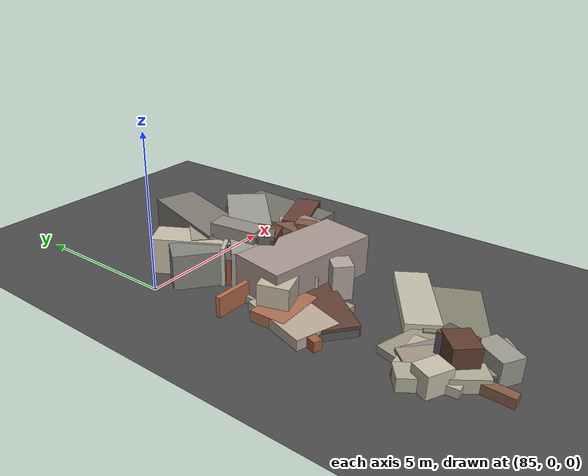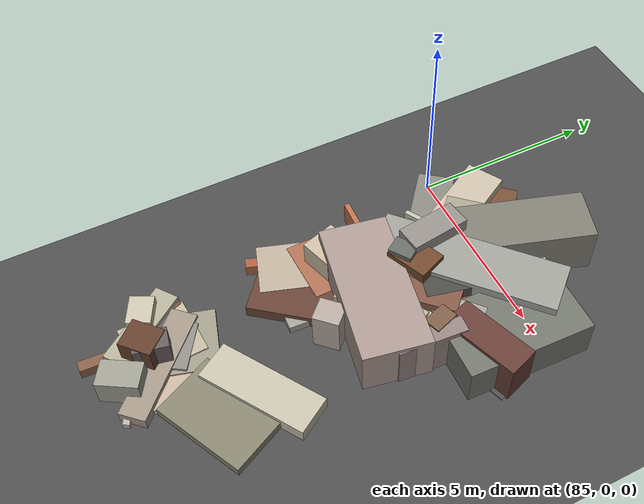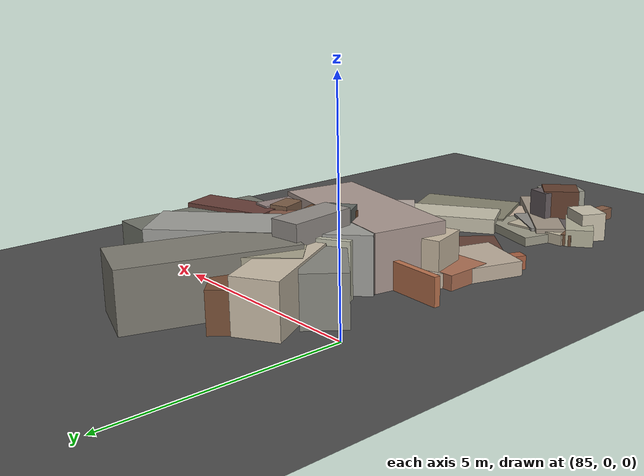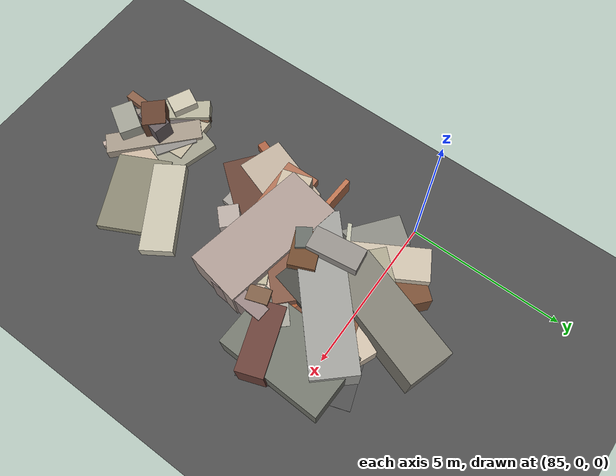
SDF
<sdf version="1.6">
 <world name="navitas_arena">
  <model name="ground_plane">
   <static>true</static>
   <link name="link">
    <collision name="collision">
     <geometry><plane><normal>0 0 1</normal><size>400 400</size></plane></geometry>
     <surface><friction><ode><mu>0.800</mu><mu2>0.800</mu2></ode></friction></surface>
    </collision>
    <visual name="visual">
     <cast_shadows>false</cast_shadows>
     <geometry><plane><normal>0 0 1</normal><size>400 400</size></plane></geometry>
     <material>
      <specular>0.04 0.04 0.04 1</specular>
      <script>
       <uri>file://media/materials/scripts/navitas_asphalt.material</uri>
       <name>Navitas/RealArenaAsphalt</name>
      </script>
     </material>
    </visual>
   </link>
  </model>
  <model name="road_zor_2_9">
   <static>true</static>
   <pose>89.256 -0.800 0.040 0 0 1.891</pose>
   <link name="link">
    <collision name="col"><geometry><box><size>3.428 4.200 0.020</size></box></geometry></collision>
    <visual name="vis">
     <geometry><box><size>3.428 4.200 0.020</size></box></geometry>
     <material>
      <specular>0.04 0.04 0.04 1</specular>
      <script>
       <uri>file://media/materials/scripts/navitas_asphalt.material</uri>
       <name>Navitas/RealArenaAsphalt</name>
      </script>
     </material>
    </visual>
   </link>
  </model>
  <model name="blk_zor_2_1_0">
   <static>true</static>
   <pose>86.995 -2.552 0.000 0 0 0</pose>
   <link name="link">
    <collision name="col_0">
     <pose>1.387 0.088 0.590 0.000 0.000 3.936</pose>
     <geometry><box><size>2.676 1.101 1.179</size></box></geometry>
    </collision>
    <visual name="vis_0">
     <pose>1.387 0.088 0.590 0.000 0.000 3.936</pose>
     <geometry><box><size>2.676 1.101 1.179</size></box></geometry>
     <material>
      <ambient>0.49 0.32 0.26 1</ambient>
      <diffuse>0.52 0.35 0.28 1</diffuse>
      <specular>0.05 0.05 0.045 1</specular>
     </material>
    </visual>
    <collision name="col_1">
     <pose>-0.401 -0.675 0.523 0.000 0.000 2.687</pose>
     <geometry><box><size>0.555 0.877 1.047</size></box></geometry>
    </collision>
    <visual name="vis_1">
     <pose>-0.401 -0.675 0.523 0.000 0.000 2.687</pose>
     <geometry><box><size>0.555 0.877 1.047</size></box></geometry>
     <material>
      <ambient>0.47 0.31 0.27 1</ambient>
      <diffuse>0.50 0.33 0.30 1</diffuse>
      <specular>0.05 0.05 0.045 1</specular>
     </material>
    </visual>
    <collision name="col_2">
     <pose>0.699 0.272 0.806 0.000 0.000 3.737</pose>
     <geometry><box><size>0.628 0.489 1.613</size></box></geometry>
    </collision>
    <visual name="vis_2">
     <pose>0.699 0.272 0.806 0.000 0.000 3.737</pose>
     <geometry><box><size>0.628 0.489 1.613</size></box></geometry>
     <material>
      <ambient>0.37 0.39 0.37 1</ambient>
      <diffuse>0.40 0.42 0.40 1</diffuse>
      <specular>0.05 0.05 0.045 1</specular>
     </material>
    </visual>
    <collision name="col_3">
     <pose>0.130 1.408 0.646 0.000 0.000 3.659</pose>
     <geometry><box><size>1.544 0.128 1.291</size></box></geometry>
    </collision>
    <visual name="vis_3">
     <pose>0.130 1.408 0.646 0.000 0.000 3.659</pose>
     <geometry><box><size>1.544 0.128 1.291</size></box></geometry>
     <material>
      <ambient>0.70 0.70 0.62 1</ambient>
      <diffuse>0.75 0.75 0.67 1</diffuse>
      <specular>0.05 0.05 0.045 1</specular>
     </material>
    </visual>
    <collision name="col_4">
     <pose>0.647 -0.476 0.363 0.000 0.000 2.081</pose>
     <geometry><box><size>2.131 1.153 0.726</size></box></geometry>
    </collision>
    <visual name="vis_4">
     <pose>0.647 -0.476 0.363 0.000 0.000 2.081</pose>
     <geometry><box><size>2.131 1.153 0.726</size></box></geometry>
     <material>
      <ambient>0.67 0.64 0.56 1</ambient>
      <diffuse>0.72 0.69 0.60 1</diffuse>
      <specular>0.05 0.05 0.045 1</specular>
     </material>
    </visual>
    <collision name="col_5">
     <pose>-0.032 -0.905 0.632 0.000 0.000 1.834</pose>
     <geometry><box><size>0.380 0.392 1.265</size></box></geometry>
    </collision>
    <visual name="vis_5">
     <pose>-0.032 -0.905 0.632 0.000 0.000 1.834</pose>
     <geometry><box><size>0.380 0.392 1.265</size></box></geometry>
     <material>
      <ambient>0.31 0.29 0.28 1</ambient>
      <diffuse>0.33 0.32 0.31 1</diffuse>
      <specular>0.05 0.05 0.045 1</specular>
     </material>
    </visual>
    <collision name="col_6">
     <pose>0.882 -1.114 0.408 0.000 0.000 3.327</pose>
     <geometry><box><size>0.314 0.482 0.816</size></box></geometry>
    </collision>
    <visual name="vis_6">
     <pose>0.882 -1.114 0.408 0.000 0.000 3.327</pose>
     <geometry><box><size>0.314 0.482 0.816</size></box></geometry>
     <material>
      <ambient>0.69 0.63 0.57 1</ambient>
      <diffuse>0.75 0.68 0.62 1</diffuse>
      <specular>0.05 0.05 0.045 1</specular>
     </material>
    </visual>
    <collision name="col_7">
     <pose>-0.646 -1.150 0.518 0.000 0.000 3.437</pose>
     <geometry><box><size>0.914 0.970 1.037</size></box></geometry>
    </collision>
    <visual name="vis_7">
     <pose>-0.646 -1.150 0.518 0.000 0.000 3.437</pose>
     <geometry><box><size>0.914 0.970 1.037</size></box></geometry>
     <material>
      <ambient>0.73 0.68 0.59 1</ambient>
      <diffuse>0.79 0.73 0.64 1</diffuse>
      <specular>0.05 0.05 0.045 1</specular>
     </material>
    </visual>
    <collision name="col_8">
     <pose>-1.040 -0.055 0.326 0.000 0.000 3.093</pose>
     <geometry><box><size>1.862 0.148 0.653</size></box></geometry>
    </collision>
    <visual name="vis_8">
     <pose>-1.040 -0.055 0.326 0.000 0.000 3.093</pose>
     <geometry><box><size>1.862 0.148 0.653</size></box></geometry>
     <material>
      <ambient>0.68 0.42 0.28 1</ambient>
      <diffuse>0.73 0.45 0.31 1</diffuse>
      <specular>0.05 0.05 0.045 1</specular>
     </material>
    </visual>
   </link>
  </model>
  <model name="blk_zor_2_1_1">
   <static>true</static>
   <pose>89.300 -1.435 0.000 0 0 0</pose>
   <link name="link">
    <collision name="col_0">
     <pose>-0.038 -1.311 0.503 0.000 0.000 2.062</pose>
     <geometry><box><size>0.500 0.387 1.006</size></box></geometry>
    </collision>
    <visual name="vis_0">
     <pose>-0.038 -1.311 0.503 0.000 0.000 2.062</pose>
     <geometry><box><size>0.500 0.387 1.006</size></box></geometry>
     <material>
      <ambient>0.67 0.65 0.56 1</ambient>
      <diffuse>0.73 0.70 0.60 1</diffuse>
      <specular>0.05 0.05 0.045 1</specular>
     </material>
    </visual>
    <collision name="col_1">
     <pose>1.146 0.677 0.545 0.000 0.000 1.533</pose>
     <geometry><box><size>3.368 2.018 1.089</size></box></geometry>
    </collision>
    <visual name="vis_1">
     <pose>1.146 0.677 0.545 0.000 0.000 1.533</pose>
     <geometry><box><size>3.368 2.018 1.089</size></box></geometry>
     <material>
      <ambient>0.41 0.43 0.39 1</ambient>
      <diffuse>0.45 0.46 0.42 1</diffuse>
      <specular>0.05 0.05 0.045 1</specular>
     </material>
    </visual>
    <collision name="col_2">
     <pose>0.430 -0.931 0.636 0.000 0.000 1.895</pose>
     <geometry><box><size>0.663 0.460 1.272</size></box></geometry>
    </collision>
    <visual name="vis_2">
     <pose>0.430 -0.931 0.636 0.000 0.000 1.895</pose>
     <geometry><box><size>0.663 0.460 1.272</size></box></geometry>
     <material>
      <ambient>0.46 0.35 0.26 1</ambient>
      <diffuse>0.49 0.37 0.28 1</diffuse>
      <specular>0.05 0.05 0.045 1</specular>
     </material>
    </visual>
    <collision name="col_3">
     <pose>0.740 -1.370 0.615 0.000 0.000 1.500</pose>
     <geometry><box><size>1.809 0.440 1.229</size></box></geometry>
    </collision>
    <visual name="vis_3">
     <pose>0.740 -1.370 0.615 0.000 0.000 1.500</pose>
     <geometry><box><size>1.809 0.440 1.229</size></box></geometry>
     <material>
      <ambient>0.55 0.48 0.47 1</ambient>
      <diffuse>0.59 0.52 0.51 1</diffuse>
      <specular>0.05 0.05 0.045 1</specular>
     </material>
    </visual>
    <collision name="col_4">
     <pose>-1.108 0.136 0.432 0.000 0.000 3.465</pose>
     <geometry><box><size>3.170 1.475 0.863</size></box></geometry>
    </collision>
    <visual name="vis_4">
     <pose>-1.108 0.136 0.432 0.000 0.000 3.465</pose>
     <geometry><box><size>3.170 1.475 0.863</size></box></geometry>
     <material>
      <ambient>0.60 0.32 0.19 1</ambient>
      <diffuse>0.64 0.35 0.21 1</diffuse>
      <specular>0.05 0.05 0.045 1</specular>
     </material>
    </visual>
    <collision name="col_5">
     <pose>-0.693 -0.806 0.427 0.000 0.000 1.982</pose>
     <geometry><box><size>1.336 0.965 0.853</size></box></geometry>
    </collision>
    <visual name="vis_5">
     <pose>-0.693 -0.806 0.427 0.000 0.000 1.982</pose>
     <geometry><box><size>1.336 0.965 0.853</size></box></geometry>
     <material>
      <ambient>0.69 0.67 0.60 1</ambient>
      <diffuse>0.75 0.73 0.65 1</diffuse>
      <specular>0.05 0.05 0.045 1</specular>
     </material>
    </visual>
    <collision name="col_6">
     <pose>1.371 -0.135 0.593 0.000 0.000 3.478</pose>
     <geometry><box><size>2.103 0.841 1.186</size></box></geometry>
    </collision>
    <visual name="vis_6">
     <pose>1.371 -0.135 0.593 0.000 0.000 3.478</pose>
     <geometry><box><size>2.103 0.841 1.186</size></box></geometry>
     <material>
      <ambient>0.38 0.24 0.21 1</ambient>
      <diffuse>0.41 0.25 0.22 1</diffuse>
      <specular>0.05 0.05 0.045 1</specular>
     </material>
    </visual>
   </link>
  </model>
  <model name="blk_zor_2_1_2">
   <static>true</static>
   <pose>87.842 -1.052 0.000 0 0 0</pose>
   <link name="link">
    <collision name="col_0">
     <pose>0.024 0.546 0.614 0.000 0.000 2.387</pose>
     <geometry><box><size>2.442 1.620 1.228</size></box></geometry>
    </collision>
    <visual name="vis_0">
     <pose>0.024 0.546 0.614 0.000 0.000 2.387</pose>
     <geometry><box><size>2.442 1.620 1.228</size></box></geometry>
     <material>
      <ambient>0.61 0.59 0.51 1</ambient>
      <diffuse>0.66 0.64 0.55 1</diffuse>
      <specular>0.05 0.05 0.045 1</specular>
     </material>
    </visual>
    <collision name="col_1">
     <pose>-0.294 -0.662 0.526 0.000 0.000 1.403</pose>
     <geometry><box><size>3.101 0.861 1.052</size></box></geometry>
    </collision>
    <visual name="vis_1">
     <pose>-0.294 -0.662 0.526 0.000 0.000 1.403</pose>
     <geometry><box><size>3.101 0.861 1.052</size></box></geometry>
     <material>
      <ambient>0.71 0.65 0.58 1</ambient>
      <diffuse>0.77 0.70 0.63 1</diffuse>
      <specular>0.05 0.05 0.045 1</specular>
     </material>
    </visual>
    <collision name="col_2">
     <pose>-0.380 -0.259 0.854 0.000 0.000 1.702</pose>
     <geometry><box><size>1.601 0.711 1.709</size></box></geometry>
    </collision>
    <visual name="vis_2">
     <pose>-0.380 -0.259 0.854 0.000 0.000 1.702</pose>
     <geometry><box><size>1.601 0.711 1.709</size></box></geometry>
     <material>
      <ambient>0.54 0.52 0.50 1</ambient>
      <diffuse>0.58 0.56 0.54 1</diffuse>
      <specular>0.05 0.05 0.045 1</specular>
     </material>
    </visual>
    <collision name="col_3">
     <pose>-1.040 -0.024 0.577 0.000 0.000 2.468</pose>
     <geometry><box><size>3.026 0.966 1.154</size></box></geometry>
    </collision>
    <visual name="vis_3">
     <pose>-1.040 -0.024 0.577 0.000 0.000 2.468</pose>
     <geometry><box><size>3.026 0.966 1.154</size></box></geometry>
     <material>
      <ambient>0.49 0.49 0.46 1</ambient>
      <diffuse>0.53 0.53 0.50 1</diffuse>
      <specular>0.05 0.05 0.045 1</specular>
     </material>
    </visual>
    <collision name="col_4">
     <pose>-0.684 0.379 0.605 0.000 0.000 2.088</pose>
     <geometry><box><size>4.073 1.022 1.209</size></box></geometry>
    </collision>
    <visual name="vis_4">
     <pose>-0.684 0.379 0.605 0.000 0.000 2.088</pose>
     <geometry><box><size>4.073 1.022 1.209</size></box></geometry>
     <material>
      <ambient>0.73 0.69 0.61 1</ambient>
      <diffuse>0.79 0.74 0.66 1</diffuse>
      <specular>0.05 0.05 0.045 1</specular>
     </material>
    </visual>
    <collision name="col_5">
     <pose>0.681 -0.877 0.542 0.000 0.000 1.054</pose>
     <geometry><box><size>0.621 0.484 1.085</size></box></geometry>
    </collision>
    <visual name="vis_5">
     <pose>0.681 -0.877 0.542 0.000 0.000 1.054</pose>
     <geometry><box><size>0.621 0.484 1.085</size></box></geometry>
     <material>
      <ambient>0.64 0.40 0.28 1</ambient>
      <diffuse>0.69 0.43 0.30 1</diffuse>
      <specular>0.05 0.05 0.045 1</specular>
     </material>
    </visual>
    <collision name="col_6">
     <pose>0.668 -0.798 0.335 0.000 0.000 2.044</pose>
     <geometry><box><size>0.242 0.648 0.670</size></box></geometry>
    </collision>
    <visual name="vis_6">
     <pose>0.668 -0.798 0.335 0.000 0.000 2.044</pose>
     <geometry><box><size>0.242 0.648 0.670</size></box></geometry>
     <material>
      <ambient>0.50 0.33 0.27 1</ambient>
      <diffuse>0.53 0.36 0.29 1</diffuse>
      <specular>0.05 0.05 0.045 1</specular>
     </material>
    </visual>
   </link>
  </model>
  <model name="blk_zor_2_1_3">
   <static>true</static>
   <pose>88.158 -0.640 0.000 0 0 0</pose>
   <link name="link">
    <collision name="col_0">
     <pose>0.884 -0.476 0.440 0.000 0.000 2.842</pose>
     <geometry><box><size>1.503 0.333 0.881</size></box></geometry>
    </collision>
    <visual name="vis_0">
     <pose>0.884 -0.476 0.440 0.000 0.000 2.842</pose>
     <geometry><box><size>1.503 0.333 0.881</size></box></geometry>
     <material>
      <ambient>0.42 0.27 0.19 1</ambient>
      <diffuse>0.46 0.29 0.21 1</diffuse>
      <specular>0.05 0.05 0.045 1</specular>
     </material>
    </visual>
    <collision name="col_1">
     <pose>-0.701 0.811 0.460 0.000 0.000 2.413</pose>
     <geometry><box><size>2.803 1.524 0.919</size></box></geometry>
    </collision>
    <visual name="vis_1">
     <pose>-0.701 0.811 0.460 0.000 0.000 2.413</pose>
     <geometry><box><size>2.803 1.524 0.919</size></box></geometry>
     <material>
      <ambient>0.43 0.29 0.20 1</ambient>
      <diffuse>0.47 0.31 0.21 1</diffuse>
      <specular>0.05 0.05 0.045 1</specular>
     </material>
    </visual>
    <collision name="col_2">
     <pose>0.707 -0.116 0.479 0.000 0.000 4.351</pose>
     <geometry><box><size>0.623 0.687 0.958</size></box></geometry>
    </collision>
    <visual name="vis_2">
     <pose>0.707 -0.116 0.479 0.000 0.000 4.351</pose>
     <geometry><box><size>0.623 0.687 0.958</size></box></geometry>
     <material>
      <ambient>0.30 0.27 0.26 1</ambient>
      <diffuse>0.32 0.30 0.28 1</diffuse>
      <specular>0.05 0.05 0.045 1</specular>
     </material>
    </visual>
    <collision name="col_3">
     <pose>-0.048 1.559 0.662 0.000 0.000 4.396</pose>
     <geometry><box><size>3.717 1.456 1.325</size></box></geometry>
    </collision>
    <visual name="vis_3">
     <pose>-0.048 1.559 0.662 0.000 0.000 4.396</pose>
     <geometry><box><size>3.717 1.456 1.325</size></box></geometry>
     <material>
      <ambient>0.46 0.45 0.42 1</ambient>
      <diffuse>0.50 0.49 0.45 1</diffuse>
      <specular>0.05 0.05 0.045 1</specular>
     </material>
    </visual>
    <collision name="col_4">
     <pose>0.759 0.656 0.377 0.000 0.000 1.839</pose>
     <geometry><box><size>0.764 0.986 0.755</size></box></geometry>
    </collision>
    <visual name="vis_4">
     <pose>0.759 0.656 0.377 0.000 0.000 1.839</pose>
     <geometry><box><size>0.764 0.986 0.755</size></box></geometry>
     <material>
      <ambient>0.49 0.33 0.24 1</ambient>
      <diffuse>0.53 0.36 0.26 1</diffuse>
      <specular>0.05 0.05 0.045 1</specular>
     </material>
    </visual>
    <collision name="col_5">
     <pose>-0.519 -0.677 0.309 0.000 0.000 1.838</pose>
     <geometry><box><size>3.254 1.816 0.618</size></box></geometry>
    </collision>
    <visual name="vis_5">
     <pose>-0.519 -0.677 0.309 0.000 0.000 1.838</pose>
     <geometry><box><size>3.254 1.816 0.618</size></box></geometry>
     <material>
      <ambient>0.48 0.32 0.27 1</ambient>
      <diffuse>0.52 0.35 0.29 1</diffuse>
      <specular>0.05 0.05 0.045 1</specular>
     </material>
    </visual>
   </link>
  </model>
  <model name="blk_zor_2_1_4">
   <static>true</static>
   <pose>89.498 -2.302 0.000 0 0 0</pose>
   <link name="link">
    <collision name="col_0">
     <pose>-0.437 1.554 0.353 0.000 0.000 1.830</pose>
     <geometry><box><size>0.339 0.383 0.706</size></box></geometry>
    </collision>
    <visual name="vis_0">
     <pose>-0.437 1.554 0.353 0.000 0.000 1.830</pose>
     <geometry><box><size>0.339 0.383 0.706</size></box></geometry>
     <material>
      <ambient>0.73 0.73 0.65 1</ambient>
      <diffuse>0.79 0.79 0.71 1</diffuse>
      <specular>0.05 0.05 0.045 1</specular>
     </material>
    </visual>
    <collision name="col_1">
     <pose>-0.910 1.404 0.665 0.000 0.000 0.732</pose>
     <geometry><box><size>4.852 1.401 1.331</size></box></geometry>
    </collision>
    <visual name="vis_1">
     <pose>-0.910 1.404 0.665 0.000 0.000 0.732</pose>
     <geometry><box><size>4.852 1.401 1.331</size></box></geometry>
     <material>
      <ambient>0.58 0.57 0.55 1</ambient>
      <diffuse>0.62 0.62 0.60 1</diffuse>
      <specular>0.05 0.05 0.045 1</specular>
     </material>
    </visual>
    <collision name="col_2">
     <pose>-1.162 0.861 0.561 0.000 0.000 1.630</pose>
     <geometry><box><size>0.289 0.383 1.122</size></box></geometry>
    </collision>
    <visual name="vis_2">
     <pose>-1.162 0.861 0.561 0.000 0.000 1.630</pose>
     <geometry><box><size>0.289 0.383 1.122</size></box></geometry>
     <material>
      <ambient>0.51 0.49 0.45 1</ambient>
      <diffuse>0.55 0.53 0.49 1</diffuse>
      <specular>0.05 0.05 0.045 1</specular>
     </material>
    </visual>
    <collision name="col_3">
     <pose>-1.503 -0.805 0.646 0.000 0.000 0.692</pose>
     <geometry><box><size>0.557 0.297 1.293</size></box></geometry>
    </collision>
    <visual name="vis_3">
     <pose>-1.503 -0.805 0.646 0.000 0.000 0.692</pose>
     <geometry><box><size>0.557 0.297 1.293</size></box></geometry>
     <material>
      <ambient>0.45 0.33 0.25 1</ambient>
      <diffuse>0.49 0.36 0.26 1</diffuse>
      <specular>0.05 0.05 0.045 1</specular>
     </material>
    </visual>
    <collision name="col_4">
     <pose>-1.106 -0.276 0.357 0.000 0.000 0.895</pose>
     <geometry><box><size>0.365 0.561 0.714</size></box></geometry>
    </collision>
    <visual name="vis_4">
     <pose>-1.106 -0.276 0.357 0.000 0.000 0.895</pose>
     <geometry><box><size>0.365 0.561 0.714</size></box></geometry>
     <material>
      <ambient>0.60 0.57 0.54 1</ambient>
      <diffuse>0.64 0.61 0.58 1</diffuse>
      <specular>0.05 0.05 0.045 1</specular>
     </material>
    </visual>
    <collision name="col_5">
     <pose>-0.380 0.482 0.544 0.000 0.000 -0.215</pose>
     <geometry><box><size>0.342 0.245 1.087</size></box></geometry>
    </collision>
    <visual name="vis_5">
     <pose>-0.380 0.482 0.544 0.000 0.000 -0.215</pose>
     <geometry><box><size>0.342 0.245 1.087</size></box></geometry>
     <material>
      <ambient>0.43 0.29 0.23 1</ambient>
      <diffuse>0.47 0.32 0.25 1</diffuse>
      <specular>0.05 0.05 0.045 1</specular>
     </material>
    </visual>
   </link>
  </model>
  <model name="blk_zor_2_1_5">
   <static>true</static>
   <pose>89.138 -2.129 0.000 0 0 0</pose>
   <link name="link">
    <collision name="col_0">
     <pose>-1.325 0.122 0.550 0.000 0.000 0.671</pose>
     <geometry><box><size>2.392 0.306 1.100</size></box></geometry>
    </collision>
    <visual name="vis_0">
     <pose>-1.325 0.122 0.550 0.000 0.000 0.671</pose>
     <geometry><box><size>2.392 0.306 1.100</size></box></geometry>
     <material>
      <ambient>0.48 0.31 0.26 1</ambient>
      <diffuse>0.52 0.34 0.28 1</diffuse>
      <specular>0.05 0.05 0.045 1</specular>
     </material>
    </visual>
    <collision name="col_1">
     <pose>-0.809 -1.355 0.521 0.000 0.000 -0.336</pose>
     <geometry><box><size>1.324 1.024 1.043</size></box></geometry>
    </collision>
    <visual name="vis_1">
     <pose>-0.809 -1.355 0.521 0.000 0.000 -0.336</pose>
     <geometry><box><size>1.324 1.024 1.043</size></box></geometry>
     <material>
      <ambient>0.47 0.48 0.44 1</ambient>
      <diffuse>0.50 0.51 0.48 1</diffuse>
      <specular>0.05 0.05 0.045 1</specular>
     </material>
    </visual>
    <collision name="col_2">
     <pose>-1.113 0.710 0.592 0.000 0.000 -0.241</pose>
     <geometry><box><size>2.346 1.292 1.185</size></box></geometry>
    </collision>
    <visual name="vis_2">
     <pose>-1.113 0.710 0.592 0.000 0.000 -0.241</pose>
     <geometry><box><size>2.346 1.292 1.185</size></box></geometry>
     <material>
      <ambient>0.27 0.27 0.25 1</ambient>
      <diffuse>0.29 0.29 0.27 1</diffuse>
      <specular>0.05 0.05 0.045 1</specular>
     </material>
    </visual>
    <collision name="col_3">
     <pose>0.405 0.407 0.550 0.000 0.000 0.722</pose>
     <geometry><box><size>1.319 0.397 1.099</size></box></geometry>
    </collision>
    <visual name="vis_3">
     <pose>0.405 0.407 0.550 0.000 0.000 0.722</pose>
     <geometry><box><size>1.319 0.397 1.099</size></box></geometry>
     <material>
      <ambient>0.59 0.58 0.55 1</ambient>
      <diffuse>0.64 0.63 0.59 1</diffuse>
      <specular>0.05 0.05 0.045 1</specular>
     </material>
    </visual>
    <collision name="col_4">
     <pose>-0.953 -1.224 0.670 0.000 0.000 -0.185</pose>
     <geometry><box><size>3.988 1.787 1.340</size></box></geometry>
    </collision>
    <visual name="vis_4">
     <pose>-0.953 -1.224 0.670 0.000 0.000 -0.185</pose>
     <geometry><box><size>3.988 1.787 1.340</size></box></geometry>
     <material>
      <ambient>0.62 0.56 0.53 1</ambient>
      <diffuse>0.67 0.60 0.57 1</diffuse>
      <specular>0.05 0.05 0.045 1</specular>
     </material>
    </visual>
    <collision name="col_5">
     <pose>0.187 -0.498 0.451 0.000 0.000 1.146</pose>
     <geometry><box><size>0.944 0.682 0.902</size></box></geometry>
    </collision>
    <visual name="vis_5">
     <pose>0.187 -0.498 0.451 0.000 0.000 1.146</pose>
     <geometry><box><size>0.944 0.682 0.902</size></box></geometry>
     <material>
      <ambient>0.76 0.68 0.62 1</ambient>
      <diffuse>0.82 0.74 0.67 1</diffuse>
      <specular>0.05 0.05 0.045 1</specular>
     </material>
    </visual>
    <collision name="col_6">
     <pose>-1.086 1.012 0.329 0.000 0.000 0.906</pose>
     <geometry><box><size>0.529 0.502 0.657</size></box></geometry>
    </collision>
    <visual name="vis_6">
     <pose>-1.086 1.012 0.329 0.000 0.000 0.906</pose>
     <geometry><box><size>0.529 0.502 0.657</size></box></geometry>
     <material>
      <ambient>0.47 0.45 0.43 1</ambient>
      <diffuse>0.50 0.48 0.46 1</diffuse>
      <specular>0.05 0.05 0.045 1</specular>
     </material>
    </visual>
    <collision name="col_7">
     <pose>-0.792 -1.308 0.334 0.000 0.000 0.402</pose>
     <geometry><box><size>1.685 0.142 0.669</size></box></geometry>
    </collision>
    <visual name="vis_7">
     <pose>-0.792 -1.308 0.334 0.000 0.000 0.402</pose>
     <geometry><box><size>1.685 0.142 0.669</size></box></geometry>
     <material>
      <ambient>0.42 0.41 0.42 1</ambient>
      <diffuse>0.46 0.45 0.45 1</diffuse>
      <specular>0.05 0.05 0.045 1</specular>
     </material>
    </visual>
    <collision name="col_8">
     <pose>-1.218 0.063 0.743 0.000 0.000 0.399</pose>
     <geometry><box><size>1.151 0.821 1.486</size></box></geometry>
    </collision>
    <visual name="vis_8">
     <pose>-1.218 0.063 0.743 0.000 0.000 0.399</pose>
     <geometry><box><size>1.151 0.821 1.486</size></box></geometry>
     <material>
      <ambient>0.40 0.27 0.17 1</ambient>
      <diffuse>0.44 0.29 0.18 1</diffuse>
      <specular>0.05 0.05 0.045 1</specular>
     </material>
    </visual>
    <collision name="col_9">
     <pose>0.197 1.318 0.345 0.000 0.000 1.159</pose>
     <geometry><box><size>3.443 2.189 0.689</size></box></geometry>
    </collision>
    <visual name="vis_9">
     <pose>0.197 1.318 0.345 0.000 0.000 1.159</pose>
     <geometry><box><size>3.443 2.189 0.689</size></box></geometry>
     <material>
      <ambient>0.74 0.69 0.61 1</ambient>
      <diffuse>0.80 0.74 0.66 1</diffuse>
      <specular>0.05 0.05 0.045 1</specular>
     </material>
    </visual>
   </link>
  </model>
  <model name="deb_zor_31">
   <static>true</static>
   <pose>87.361 -8.842 0.000 0 0 0</pose>
   <link name="link">
    <collision name="col_0">
     <pose>-0.115 0.101 0.167 0.000 0.000 -0.760</pose>
     <geometry><box><size>3.105 0.704 0.334</size></box></geometry>
    </collision>
    <visual name="vis_0">
     <pose>-0.115 0.101 0.167 0.000 0.000 -0.760</pose>
     <geometry><box><size>3.105 0.704 0.334</size></box></geometry>
     <material>
      <ambient>0.59 0.55 0.49 1</ambient>
      <diffuse>0.64 0.59 0.53 1</diffuse>
      <specular>0.05 0.05 0.045 1</specular>
     </material>
    </visual>
    <collision name="col_1">
     <pose>-0.541 -0.078 0.509 0.000 0.000 -0.828</pose>
     <geometry><box><size>0.766 0.881 1.018</size></box></geometry>
    </collision>
    <visual name="vis_1">
     <pose>-0.541 -0.078 0.509 0.000 0.000 -0.828</pose>
     <geometry><box><size>0.766 0.881 1.018</size></box></geometry>
     <material>
      <ambient>0.36 0.24 0.16 1</ambient>
      <diffuse>0.39 0.25 0.18 1</diffuse>
      <specular>0.05 0.05 0.045 1</specular>
     </material>
    </visual>
    <collision name="col_2">
     <pose>-0.509 -0.614 0.179 0.000 0.000 -1.005</pose>
     <geometry><box><size>0.719 0.562 0.357</size></box></geometry>
    </collision>
    <visual name="vis_2">
     <pose>-0.509 -0.614 0.179 0.000 0.000 -1.005</pose>
     <geometry><box><size>0.719 0.562 0.357</size></box></geometry>
     <material>
      <ambient>0.53 0.49 0.45 1</ambient>
      <diffuse>0.57 0.53 0.49 1</diffuse>
      <specular>0.05 0.05 0.045 1</specular>
     </material>
    </visual>
    <collision name="col_3">
     <pose>0.015 -0.856 0.378 0.000 0.000 1.026</pose>
     <geometry><box><size>1.066 0.715 0.756</size></box></geometry>
    </collision>
    <visual name="vis_3">
     <pose>0.015 -0.856 0.378 0.000 0.000 1.026</pose>
     <geometry><box><size>1.066 0.715 0.756</size></box></geometry>
     <material>
      <ambient>0.57 0.57 0.53 1</ambient>
      <diffuse>0.62 0.62 0.57 1</diffuse>
      <specular>0.05 0.05 0.045 1</specular>
     </material>
    </visual>
    <collision name="col_4">
     <pose>0.248 -0.700 0.084 0.000 0.000 -0.517</pose>
     <geometry><box><size>1.801 0.171 0.168</size></box></geometry>
    </collision>
    <visual name="vis_4">
     <pose>0.248 -0.700 0.084 0.000 0.000 -0.517</pose>
     <geometry><box><size>1.801 0.171 0.168</size></box></geometry>
     <material>
      <ambient>0.70 0.64 0.60 1</ambient>
      <diffuse>0.76 0.69 0.65 1</diffuse>
      <specular>0.05 0.05 0.045 1</specular>
     </material>
    </visual>
    <collision name="col_5">
     <pose>-0.384 0.063 0.491 0.000 0.000 -0.199</pose>
     <geometry><box><size>0.574 0.903 0.983</size></box></geometry>
    </collision>
    <visual name="vis_5">
     <pose>-0.384 0.063 0.491 0.000 0.000 -0.199</pose>
     <geometry><box><size>0.574 0.903 0.983</size></box></geometry>
     <material>
      <ambient>0.37 0.33 0.34 1</ambient>
      <diffuse>0.40 0.36 0.37 1</diffuse>
      <specular>0.05 0.05 0.045 1</specular>
     </material>
    </visual>
   </link>
  </model>
  <model name="deb_zor_166">
   <static>true</static>
   <pose>89.071 -7.702 0.000 0 0 0</pose>
   <link name="link">
    <collision name="col_0">
     <pose>0.543 -0.482 0.071 0.000 0.000 1.452</pose>
     <geometry><box><size>0.257 0.207 0.142</size></box></geometry>
    </collision>
    <visual name="vis_0">
     <pose>0.543 -0.482 0.071 0.000 0.000 1.452</pose>
     <geometry><box><size>0.257 0.207 0.142</size></box></geometry>
     <material>
      <ambient>0.61 0.58 0.51 1</ambient>
      <diffuse>0.65 0.62 0.55 1</diffuse>
      <specular>0.05 0.05 0.045 1</specular>
     </material>
    </visual>
    <collision name="col_1">
     <pose>0.079 -0.165 0.132 0.000 0.000 0.457</pose>
     <geometry><box><size>2.564 1.768 0.263</size></box></geometry>
    </collision>
    <visual name="vis_1">
     <pose>0.079 -0.165 0.132 0.000 0.000 0.457</pose>
     <geometry><box><size>2.564 1.768 0.263</size></box></geometry>
     <material>
      <ambient>0.49 0.48 0.40 1</ambient>
      <diffuse>0.53 0.52 0.44 1</diffuse>
      <specular>0.05 0.05 0.045 1</specular>
     </material>
    </visual>
    <collision name="col_2">
     <pose>0.602 -0.272 0.075 0.000 0.000 1.339</pose>
     <geometry><box><size>0.340 0.226 0.151</size></box></geometry>
    </collision>
    <visual name="vis_2">
     <pose>0.602 -0.272 0.075 0.000 0.000 1.339</pose>
     <geometry><box><size>0.340 0.226 0.151</size></box></geometry>
     <material>
      <ambient>0.35 0.32 0.30 1</ambient>
      <diffuse>0.37 0.35 0.32 1</diffuse>
      <specular>0.05 0.05 0.045 1</specular>
     </material>
    </visual>
    <collision name="col_3">
     <pose>-0.050 0.914 0.188 0.000 0.000 0.563</pose>
     <geometry><box><size>2.995 1.042 0.376</size></box></geometry>
    </collision>
    <visual name="vis_3">
     <pose>-0.050 0.914 0.188 0.000 0.000 0.563</pose>
     <geometry><box><size>2.995 1.042 0.376</size></box></geometry>
     <material>
      <ambient>0.71 0.69 0.62 1</ambient>
      <diffuse>0.77 0.75 0.67 1</diffuse>
      <specular>0.05 0.05 0.045 1</specular>
     </material>
    </visual>
   </link>
  </model>
  <model name="deb_zor_175">
   <static>true</static>
   <pose>87.605 -4.687 0.000 0 0 0</pose>
   <link name="link">
    <collision name="col_0">
     <pose>0.672 0.063 0.564 0.000 0.000 2.354</pose>
     <geometry><box><size>0.642 0.697 1.128</size></box></geometry>
    </collision>
    <visual name="vis_0">
     <pose>0.672 0.063 0.564 0.000 0.000 2.354</pose>
     <geometry><box><size>0.642 0.697 1.128</size></box></geometry>
     <material>
      <ambient>0.66 0.61 0.58 1</ambient>
      <diffuse>0.71 0.66 0.63 1</diffuse>
      <specular>0.05 0.05 0.045 1</specular>
     </material>
    </visual>
    <collision name="col_1">
     <pose>-0.509 0.796 0.149 0.000 0.000 1.931</pose>
     <geometry><box><size>0.463 0.306 0.299</size></box></geometry>
    </collision>
    <visual name="vis_1">
     <pose>-0.509 0.796 0.149 0.000 0.000 1.931</pose>
     <geometry><box><size>0.463 0.306 0.299</size></box></geometry>
     <material>
      <ambient>0.43 0.46 0.41 1</ambient>
      <diffuse>0.47 0.49 0.45 1</diffuse>
      <specular>0.05 0.05 0.045 1</specular>
     </material>
    </visual>
    <collision name="col_2">
     <pose>-0.924 -0.252 0.127 0.000 0.000 0.888</pose>
     <geometry><box><size>2.056 1.586 0.254</size></box></geometry>
    </collision>
    <visual name="vis_2">
     <pose>-0.924 -0.252 0.127 0.000 0.000 0.888</pose>
     <geometry><box><size>2.056 1.586 0.254</size></box></geometry>
     <material>
      <ambient>0.32 0.34 0.33 1</ambient>
      <diffuse>0.35 0.37 0.36 1</diffuse>
      <specular>0.05 0.05 0.045 1</specular>
     </material>
    </visual>
    <collision name="col_3">
     <pose>0.495 0.694 0.108 0.000 0.000 1.146</pose>
     <geometry><box><size>1.603 0.259 0.216</size></box></geometry>
    </collision>
    <visual name="vis_3">
     <pose>0.495 0.694 0.108 0.000 0.000 1.146</pose>
     <geometry><box><size>1.603 0.259 0.216</size></box></geometry>
     <material>
      <ambient>0.45 0.41 0.41 1</ambient>
      <diffuse>0.48 0.44 0.45 1</diffuse>
      <specular>0.05 0.05 0.045 1</specular>
     </material>
    </visual>
   </link>
  </model>
  <model name="deb_zor_204">
   <static>true</static>
   <pose>87.149 -8.710 0.000 0 0 0</pose>
   <link name="link">
    <collision name="col_0">
     <pose>-1.055 -0.078 0.208 0.000 0.000 2.209</pose>
     <geometry><box><size>2.294 0.660 0.416</size></box></geometry>
    </collision>
    <visual name="vis_0">
     <pose>-1.055 -0.078 0.208 0.000 0.000 2.209</pose>
     <geometry><box><size>2.294 0.660 0.416</size></box></geometry>
     <material>
      <ambient>0.64 0.64 0.56 1</ambient>
      <diffuse>0.70 0.69 0.60 1</diffuse>
      <specular>0.05 0.05 0.045 1</specular>
     </material>
    </visual>
    <collision name="col_1">
     <pose>-0.657 -0.921 0.147 0.000 0.000 1.524</pose>
     <geometry><box><size>1.797 0.300 0.294</size></box></geometry>
    </collision>
    <visual name="vis_1">
     <pose>-0.657 -0.921 0.147 0.000 0.000 1.524</pose>
     <geometry><box><size>1.797 0.300 0.294</size></box></geometry>
     <material>
      <ambient>0.49 0.34 0.26 1</ambient>
      <diffuse>0.53 0.37 0.28 1</diffuse>
      <specular>0.05 0.05 0.045 1</specular>
     </material>
    </visual>
    <collision name="col_2">
     <pose>1.044 0.424 0.087 0.000 0.000 2.417</pose>
     <geometry><box><size>1.524 1.373 0.174</size></box></geometry>
    </collision>
    <visual name="vis_2">
     <pose>1.044 0.424 0.087 0.000 0.000 2.417</pose>
     <geometry><box><size>1.524 1.373 0.174</size></box></geometry>
     <material>
      <ambient>0.72 0.65 0.57 1</ambient>
      <diffuse>0.78 0.70 0.62 1</diffuse>
      <specular>0.05 0.05 0.045 1</specular>
     </material>
    </visual>
    <collision name="col_3">
     <pose>-0.207 0.825 0.110 0.000 0.000 1.285</pose>
     <geometry><box><size>1.460 1.746 0.220</size></box></geometry>
    </collision>
    <visual name="vis_3">
     <pose>-0.207 0.825 0.110 0.000 0.000 1.285</pose>
     <geometry><box><size>1.460 1.746 0.220</size></box></geometry>
     <material>
      <ambient>0.58 0.57 0.50 1</ambient>
      <diffuse>0.62 0.61 0.54 1</diffuse>
      <specular>0.05 0.05 0.045 1</specular>
     </material>
    </visual>
    <collision name="col_4">
     <pose>-0.402 -0.556 0.169 0.000 0.000 2.404</pose>
     <geometry><box><size>2.148 0.213 0.339</size></box></geometry>
    </collision>
    <visual name="vis_4">
     <pose>-0.402 -0.556 0.169 0.000 0.000 2.404</pose>
     <geometry><box><size>2.148 0.213 0.339</size></box></geometry>
     <material>
      <ambient>0.50 0.51 0.48 1</ambient>
      <diffuse>0.54 0.55 0.51 1</diffuse>
      <specular>0.05 0.05 0.045 1</specular>
     </material>
    </visual>
   </link>
  </model>
  <model name="deb_zor_276">
   <static>true</static>
   <pose>86.250 -7.969 0.000 0 0 0</pose>
   <link name="link">
    <collision name="col_0">
     <pose>-0.444 -0.700 0.346 0.000 0.000 1.106</pose>
     <geometry><box><size>0.632 0.806 0.692</size></box></geometry>
    </collision>
    <visual name="vis_0">
     <pose>-0.444 -0.700 0.346 0.000 0.000 1.106</pose>
     <geometry><box><size>0.632 0.806 0.692</size></box></geometry>
     <material>
      <ambient>0.73 0.70 0.63 1</ambient>
      <diffuse>0.79 0.76 0.68 1</diffuse>
      <specular>0.05 0.05 0.045 1</specular>
     </material>
    </visual>
    <collision name="col_1">
     <pose>0.269 0.285 0.073 0.000 0.000 1.487</pose>
     <geometry><box><size>1.033 0.229 0.146</size></box></geometry>
    </collision>
    <visual name="vis_1">
     <pose>0.269 0.285 0.073 0.000 0.000 1.487</pose>
     <geometry><box><size>1.033 0.229 0.146</size></box></geometry>
     <material>
      <ambient>0.39 0.36 0.38 1</ambient>
      <diffuse>0.42 0.38 0.41 1</diffuse>
      <specular>0.05 0.05 0.045 1</specular>
     </material>
    </visual>
    <collision name="col_2">
     <pose>0.224 0.681 0.068 0.000 0.000 2.387</pose>
     <geometry><box><size>0.284 0.404 0.136</size></box></geometry>
    </collision>
    <visual name="vis_2">
     <pose>0.224 0.681 0.068 0.000 0.000 2.387</pose>
     <geometry><box><size>0.284 0.404 0.136</size></box></geometry>
     <material>
      <ambient>0.71 0.69 0.59 1</ambient>
      <diffuse>0.77 0.75 0.64 1</diffuse>
      <specular>0.05 0.05 0.045 1</specular>
     </material>
    </visual>
    <collision name="col_3">
     <pose>0.494 -0.498 0.144 0.000 0.000 1.002</pose>
     <geometry><box><size>1.481 1.355 0.287</size></box></geometry>
    </collision>
    <visual name="vis_3">
     <pose>0.494 -0.498 0.144 0.000 0.000 1.002</pose>
     <geometry><box><size>1.481 1.355 0.287</size></box></geometry>
     <material>
      <ambient>0.52 0.51 0.49 1</ambient>
      <diffuse>0.56 0.55 0.53 1</diffuse>
      <specular>0.05 0.05 0.045 1</specular>
     </material>
    </visual>
    <collision name="col_4">
     <pose>-0.489 0.042 0.139 0.000 0.000 1.913</pose>
     <geometry><box><size>0.503 0.256 0.278</size></box></geometry>
    </collision>
    <visual name="vis_4">
     <pose>-0.489 0.042 0.139 0.000 0.000 1.913</pose>
     <geometry><box><size>0.503 0.256 0.278</size></box></geometry>
     <material>
      <ambient>0.42 0.31 0.22 1</ambient>
      <diffuse>0.46 0.33 0.24 1</diffuse>
      <specular>0.05 0.05 0.045 1</specular>
     </material>
    </visual>
    <collision name="col_5">
     <pose>0.346 -0.475 0.132 0.000 0.000 0.056</pose>
     <geometry><box><size>1.597 1.772 0.263</size></box></geometry>
    </collision>
    <visual name="vis_5">
     <pose>0.346 -0.475 0.132 0.000 0.000 0.056</pose>
     <geometry><box><size>1.597 1.772 0.263</size></box></geometry>
     <material>
      <ambient>0.69 0.66 0.58 1</ambient>
      <diffuse>0.75 0.71 0.62 1</diffuse>
      <specular>0.05 0.05 0.045 1</specular>
     </material>
    </visual>
    <collision name="col_6">
     <pose>0.413 -0.803 0.153 0.000 0.000 2.222</pose>
     <geometry><box><size>1.929 1.216 0.307</size></box></geometry>
    </collision>
    <visual name="vis_6">
     <pose>0.413 -0.803 0.153 0.000 0.000 2.222</pose>
     <geometry><box><size>1.929 1.216 0.307</size></box></geometry>
     <material>
      <ambient>0.36 0.33 0.33 1</ambient>
      <diffuse>0.39 0.36 0.36 1</diffuse>
      <specular>0.05 0.05 0.045 1</specular>
     </material>
    </visual>
   </link>
  </model>
  <model name="deb_zor_323">
   <static>true</static>
   <pose>86.519 -4.997 0.000 0 0 0</pose>
   <link name="link">
    <collision name="col_0">
     <pose>0.402 0.408 0.169 0.000 0.000 0.895</pose>
     <geometry><box><size>2.855 1.758 0.337</size></box></geometry>
    </collision>
    <visual name="vis_0">
     <pose>0.402 0.408 0.169 0.000 0.000 0.895</pose>
     <geometry><box><size>2.855 1.758 0.337</size></box></geometry>
     <material>
      <ambient>0.37 0.24 0.20 1</ambient>
      <diffuse>0.40 0.26 0.21 1</diffuse>
      <specular>0.05 0.05 0.045 1</specular>
     </material>
    </visual>
    <collision name="col_1">
     <pose>0.403 0.066 0.120 0.000 0.000 1.339</pose>
     <geometry><box><size>0.395 0.409 0.241</size></box></geometry>
    </collision>
    <visual name="vis_1">
     <pose>0.403 0.066 0.120 0.000 0.000 1.339</pose>
     <geometry><box><size>0.395 0.409 0.241</size></box></geometry>
     <material>
      <ambient>0.50 0.50 0.46 1</ambient>
      <diffuse>0.54 0.54 0.49 1</diffuse>
      <specular>0.05 0.05 0.045 1</specular>
     </material>
    </visual>
    <collision name="col_2">
     <pose>0.032 -0.103 0.135 0.000 0.000 1.434</pose>
     <geometry><box><size>0.306 0.414 0.270</size></box></geometry>
    </collision>
    <visual name="vis_2">
     <pose>0.032 -0.103 0.135 0.000 0.000 1.434</pose>
     <geometry><box><size>0.306 0.414 0.270</size></box></geometry>
     <material>
      <ambient>0.34 0.32 0.33 1</ambient>
      <diffuse>0.37 0.35 0.35 1</diffuse>
      <specular>0.05 0.05 0.045 1</specular>
     </material>
    </visual>
    <collision name="col_3">
     <pose>-0.846 0.022 0.163 0.000 0.000 1.211</pose>
     <geometry><box><size>1.579 0.284 0.327</size></box></geometry>
    </collision>
    <visual name="vis_3">
     <pose>-0.846 0.022 0.163 0.000 0.000 1.211</pose>
     <geometry><box><size>1.579 0.284 0.327</size></box></geometry>
     <material>
      <ambient>0.61 0.35 0.24 1</ambient>
      <diffuse>0.66 0.38 0.26 1</diffuse>
      <specular>0.05 0.05 0.045 1</specular>
     </material>
    </visual>
   </link>
  </model>
  <model name="deb_zor_346">
   <static>true</static>
   <pose>86.498 -4.003 0.000 0 0 0</pose>
   <link name="link">
    <collision name="col_0">
     <pose>0.217 0.462 0.117 0.000 0.000 1.540</pose>
     <geometry><box><size>2.307 0.300 0.234</size></box></geometry>
    </collision>
    <visual name="vis_0">
     <pose>0.217 0.462 0.117 0.000 0.000 1.540</pose>
     <geometry><box><size>2.307 0.300 0.234</size></box></geometry>
     <material>
      <ambient>0.40 0.27 0.21 1</ambient>
      <diffuse>0.44 0.29 0.22 1</diffuse>
      <specular>0.05 0.05 0.045 1</specular>
     </material>
    </visual>
    <collision name="col_1">
     <pose>0.426 -0.043 0.107 0.000 0.000 1.509</pose>
     <geometry><box><size>2.785 1.754 0.215</size></box></geometry>
    </collision>
    <visual name="vis_1">
     <pose>0.426 -0.043 0.107 0.000 0.000 1.509</pose>
     <geometry><box><size>2.785 1.754 0.215</size></box></geometry>
     <material>
      <ambient>0.59 0.58 0.54 1</ambient>
      <diffuse>0.64 0.62 0.59 1</diffuse>
      <specular>0.05 0.05 0.045 1</specular>
     </material>
    </visual>
    <collision name="col_2">
     <pose>0.155 0.372 0.099 0.000 0.000 1.435</pose>
     <geometry><box><size>1.230 0.194 0.198</size></box></geometry>
    </collision>
    <visual name="vis_2">
     <pose>0.155 0.372 0.099 0.000 0.000 1.435</pose>
     <geometry><box><size>1.230 0.194 0.198</size></box></geometry>
     <material>
      <ambient>0.52 0.52 0.48 1</ambient>
      <diffuse>0.56 0.56 0.52 1</diffuse>
      <specular>0.05 0.05 0.045 1</specular>
     </material>
    </visual>
    <collision name="col_3">
     <pose>0.226 -0.219 0.140 0.000 0.000 0.502</pose>
     <geometry><box><size>0.421 0.340 0.280</size></box></geometry>
    </collision>
    <visual name="vis_3">
     <pose>0.226 -0.219 0.140 0.000 0.000 0.502</pose>
     <geometry><box><size>0.421 0.340 0.280</size></box></geometry>
     <material>
      <ambient>0.53 0.54 0.48 1</ambient>
      <diffuse>0.57 0.59 0.52 1</diffuse>
      <specular>0.05 0.05 0.045 1</specular>
     </material>
    </visual>
    <collision name="col_4">
     <pose>0.221 0.080 0.118 0.000 0.000 0.971</pose>
     <geometry><box><size>1.974 0.147 0.237</size></box></geometry>
    </collision>
    <visual name="vis_4">
     <pose>0.221 0.080 0.118 0.000 0.000 0.971</pose>
     <geometry><box><size>1.974 0.147 0.237</size></box></geometry>
     <material>
      <ambient>0.40 0.25 0.22 1</ambient>
      <diffuse>0.43 0.27 0.24 1</diffuse>
      <specular>0.05 0.05 0.045 1</specular>
     </material>
    </visual>
    <collision name="col_5">
     <pose>-0.374 -0.399 0.171 0.000 0.000 1.246</pose>
     <geometry><box><size>2.341 1.479 0.341</size></box></geometry>
    </collision>
    <visual name="vis_5">
     <pose>-0.374 -0.399 0.171 0.000 0.000 1.246</pose>
     <geometry><box><size>2.341 1.479 0.341</size></box></geometry>
     <material>
      <ambient>0.69 0.63 0.57 1</ambient>
      <diffuse>0.74 0.68 0.61 1</diffuse>
      <specular>0.05 0.05 0.045 1</specular>
     </material>
    </visual>
    <collision name="col_6">
     <pose>-0.160 0.034 0.174 0.000 0.000 0.022</pose>
     <geometry><box><size>1.776 1.144 0.348</size></box></geometry>
    </collision>
    <visual name="vis_6">
     <pose>-0.160 0.034 0.174 0.000 0.000 0.022</pose>
     <geometry><box><size>1.776 1.144 0.348</size></box></geometry>
     <material>
      <ambient>0.63 0.40 0.30 1</ambient>
      <diffuse>0.68 0.44 0.33 1</diffuse>
      <specular>0.05 0.05 0.045 1</specular>
     </material>
    </visual>
   </link>
  </model>
 </world>
</sdf>
